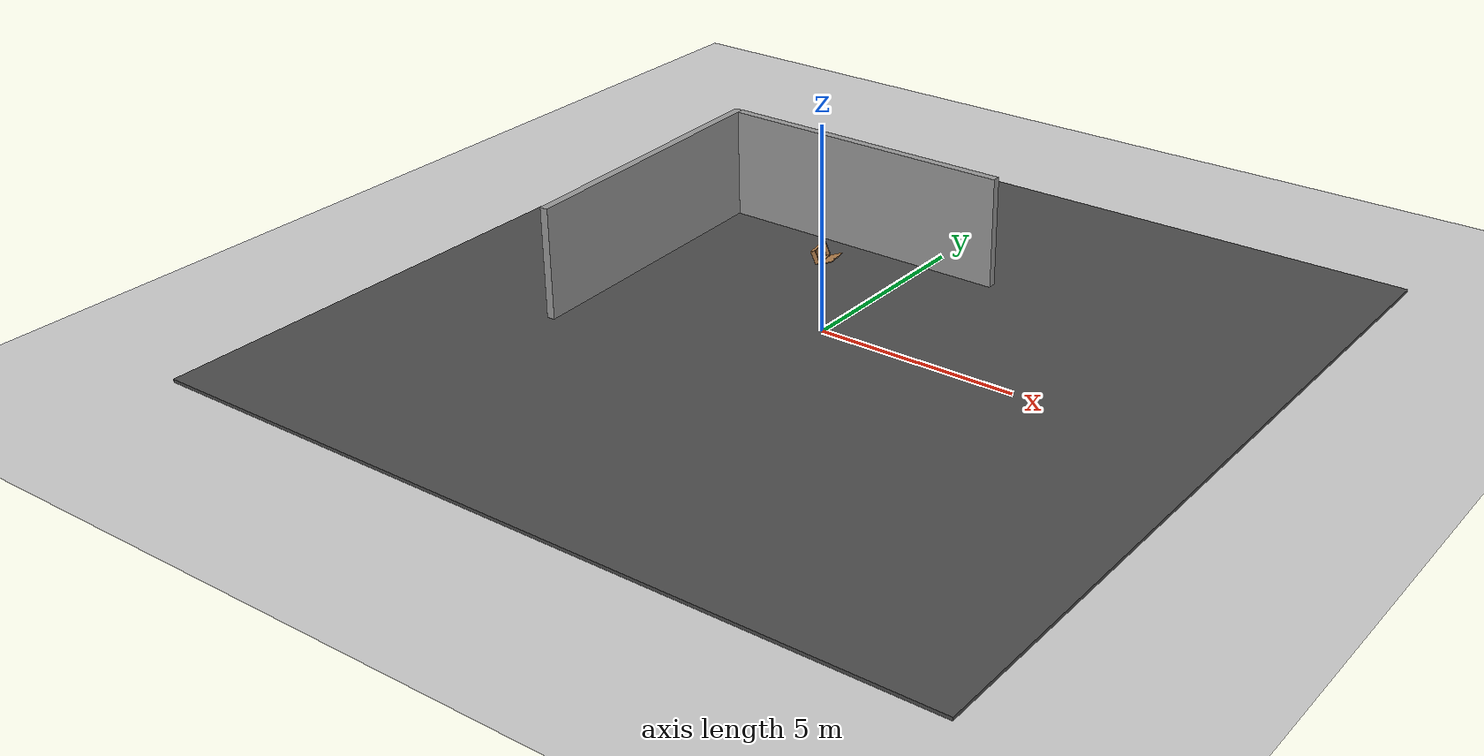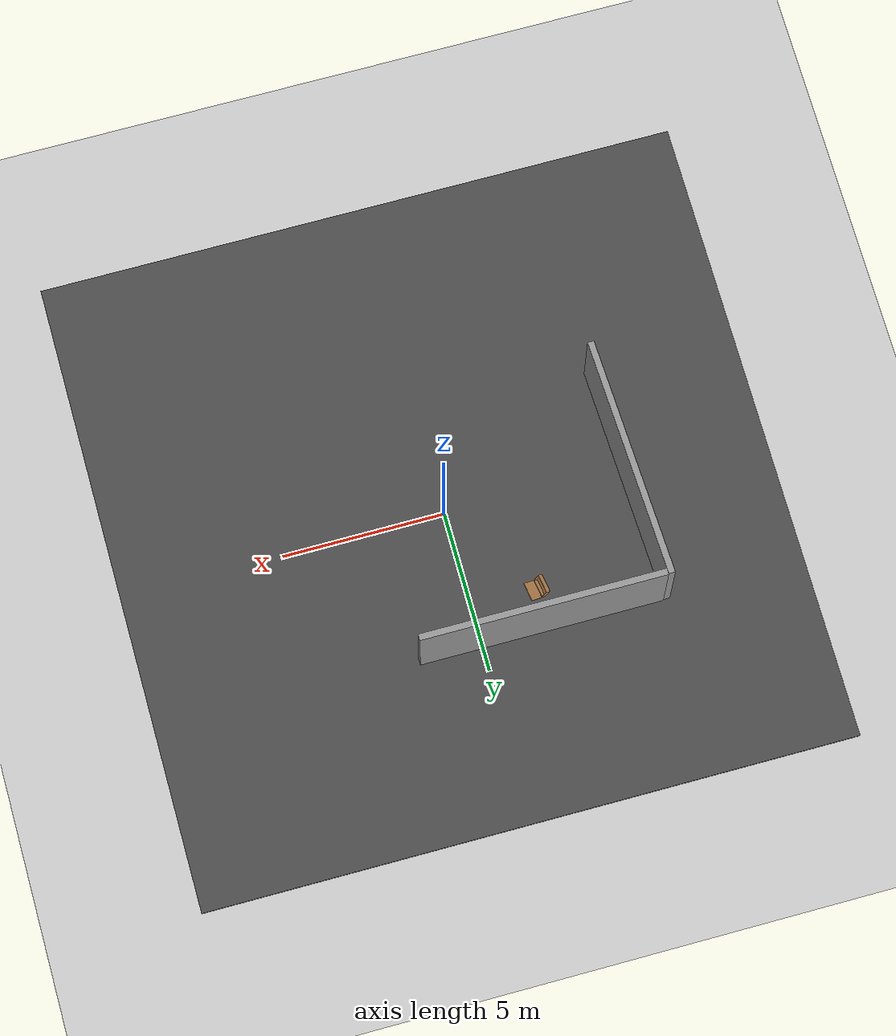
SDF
<sdf version="1.7">
 <world name="default">
  <model name="ground_plane">
   <static>1</static>
   <link name="link">
    <collision name="collision">
     <geometry><plane><normal>0 0 1</normal><size>100 100</size></plane></geometry>
     <surface><friction><ode><mu>100</mu><mu2>50</mu2></ode></friction></surface>
    </collision>
    <visual name="visual">
     <cast_shadows>0</cast_shadows>
     <geometry><plane><normal>0 0 1</normal><size>100 100</size></plane></geometry>
     <material>
      <script><uri>file://media/materials/scripts/gazebo.material</uri><name>Gazebo/Grey</name></script>
     </material>
    </visual>
   </link>
  </model>
  <model name="grey_wall_1">
   <static>1</static>
   <link name="link">
    <pose>0 0 1.4 0 -0 0</pose>
    <collision name="collision"><geometry><box><size>7.5 0.2 2.8</size></box></geometry></collision>
    <visual name="visual">
     <cast_shadows>0</cast_shadows>
     <geometry><box><size>7.5 0.2 2.8</size></box></geometry>
     <material>
      <script>
       <uri>model://grey_wall/materials/scripts</uri>
       <uri>model://grey_wall/materials/textures</uri>
       <name>vrc/grey_wall</name>
      </script>
     </material>
    </visual>
   </link>
   <pose>-5.53671 0.548219 0 0 -0 1.61093</pose>
  </model>
  <model name="grey_wall_4">
   <static>1</static>
   <link name="link">
    <pose>0 0 1.4 0 -0 0</pose>
    <collision name="collision"><geometry><box><size>7.5 0.2 2.8</size></box></geometry></collision>
    <visual name="visual">
     <cast_shadows>0</cast_shadows>
     <geometry><box><size>7.5 0.2 2.8</size></box></geometry>
     <material>
      <script>
       <uri>model://grey_wall/materials/scripts</uri>
       <uri>model://grey_wall/materials/textures</uri>
       <name>vrc/grey_wall</name>
      </script>
     </material>
    </visual>
   </link>
   <pose>-1.82816 4.21809 0 0 -0 0</pose>
  </model>
  <model name="wooden_case">
   <link name="base">
    <pose>0 0 0.024 0 -0 0</pose>
    <inertial>
     <pose>-0.022184 0 0.171592 0 -0 0</pose>
     <mass>3.96264</mass>
     <inertia>
      <ixx>0.213536</ixx>
      <ixy>0</ixy>
      <ixz>0.000779377</ixz>
      <iyy>0.0708943</iyy>
      <iyz>0</iyz>
      <izz>0.154604</izz>
     </inertia>
    </inertial>
    <collision name="collision_back">
     <pose>-0.053975 0 0.1778 0 -0 0</pose>
     <geometry><box><size>0.01905 0.5461 0.3175</size></box></geometry>
     <surface>
      <contact>
       <poissons_ratio>0.347</poissons_ratio>
       <elastic_modulus>8.8e+09</elastic_modulus>
       <ode><kp>100000</kp><kd>100</kd><max_vel>100</max_vel><min_depth>0.001</min_depth></ode>
      </contact>
      <friction>
       <torsional>
        <coefficient>1</coefficient>
        <use_patch_radius>0</use_patch_radius>
        <surface_radius>0.01</surface_radius>
       </torsional>
      </friction>
     </surface>
    </collision>
    <visual name="visual_back">
     <pose>-0.053975 0 0.1778 0 -0 0</pose>
     <geometry><box><size>0.01905 0.5461 0.3175</size></box></geometry>
     <material>
      <script><uri>file://media/materials/scripts/gazebo.material</uri><name>Gazebo/Wood</name></script>
     </material>
    </visual>
    <collision name="collision_bottom">
     <pose>0 0 0.009525 0 -0 0</pose>
     <geometry><box><size>0.127 0.5842 0.01905</size></box></geometry>
     <surface>
      <contact>
       <poissons_ratio>0.347</poissons_ratio>
       <elastic_modulus>8.8e+09</elastic_modulus>
       <ode><kp>100000</kp><kd>100</kd><max_vel>100</max_vel><min_depth>0.001</min_depth></ode>
      </contact>
      <friction>
       <torsional>
        <coefficient>1</coefficient>
        <use_patch_radius>0</use_patch_radius>
        <surface_radius>0.01</surface_radius>
       </torsional>
      </friction>
     </surface>
    </collision>
    <visual name="visual_bottom">
     <pose>0 0 0.009525 0 -0 0</pose>
     <geometry><box><size>0.127 0.5842 0.01905</size></box></geometry>
     <material>
      <script><uri>file://media/materials/scripts/gazebo.material</uri><name>Gazebo/Wood</name></script>
     </material>
    </visual>
    <collision name="collision_top">
     <pose>0 0 0.346075 0 -0 0</pose>
     <geometry><box><size>0.127 0.5842 0.01905</size></box></geometry>
     <surface>
      <contact>
       <poissons_ratio>0.347</poissons_ratio>
       <elastic_modulus>8.8e+09</elastic_modulus>
       <ode><kp>100000</kp><kd>100</kd><max_vel>100</max_vel><min_depth>0.001</min_depth></ode>
      </contact>
      <friction>
       <torsional>
        <coefficient>1</coefficient>
        <use_patch_radius>0</use_patch_radius>
        <surface_radius>0.01</surface_radius>
       </torsional>
      </friction>
     </surface>
    </collision>
    <visual name="visual_top">
     <pose>0 0 0.346075 0 -0 0</pose>
     <geometry><box><size>0.127 0.5842 0.01905</size></box></geometry>
     <material>
      <script><uri>file://media/materials/scripts/gazebo.material</uri><name>Gazebo/Wood</name></script>
     </material>
    </visual>
    <collision name="collision_left">
     <pose>0 -0.282575 0.1778 0 -0 0</pose>
     <geometry><box><size>0.127 0.01905 0.3175</size></box></geometry>
     <surface>
      <contact>
       <poissons_ratio>0.347</poissons_ratio>
       <elastic_modulus>8.8e+09</elastic_modulus>
       <ode><kp>100000</kp><kd>100</kd><max_vel>100</max_vel><min_depth>0.001</min_depth></ode>
      </contact>
      <friction>
       <torsional>
        <coefficient>1</coefficient>
        <use_patch_radius>0</use_patch_radius>
        <surface_radius>0.01</surface_radius>
       </torsional>
      </friction>
     </surface>
    </collision>
    <visual name="visual_left">
     <pose>0 -0.282575 0.1778 0 -0 0</pose>
     <geometry><box><size>0.127 0.01905 0.3175</size></box></geometry>
     <material>
      <script><uri>file://media/materials/scripts/gazebo.material</uri><name>Gazebo/Wood</name></script>
     </material>
    </visual>
    <collision name="collision_right">
     <pose>0 0.282575 0.1778 0 -0 0</pose>
     <geometry><box><size>0.127 0.01905 0.3175</size></box></geometry>
     <surface>
      <contact>
       <poissons_ratio>0.347</poissons_ratio>
       <elastic_modulus>8.8e+09</elastic_modulus>
       <ode><kp>100000</kp><kd>100</kd><max_vel>100</max_vel><min_depth>0.001</min_depth></ode>
      </contact>
      <friction>
       <torsional>
        <coefficient>1</coefficient>
        <use_patch_radius>0</use_patch_radius>
        <surface_radius>0.01</surface_radius>
       </torsional>
      </friction>
     </surface>
    </collision>
    <visual name="visual_right">
     <pose>0 0.282575 0.1778 0 -0 0</pose>
     <geometry><box><size>0.127 0.01905 0.3175</size></box></geometry>
     <material>
      <script><uri>file://media/materials/scripts/gazebo.material</uri><name>Gazebo/Wood</name></script>
     </material>
    </visual>
    <collision name="collision_block_left">
     <pose>0.0095 -0.2151 -0.012 0 -0 0</pose>
     <geometry><box><size>0.108 0.05 0.024</size></box></geometry>
     <surface>
      <contact>
       <poissons_ratio>0.347</poissons_ratio>
       <elastic_modulus>8.8e+09</elastic_modulus>
       <ode><kp>100000</kp><kd>100</kd><max_vel>100</max_vel><min_depth>0.001</min_depth></ode>
      </contact>
      <friction>
       <torsional>
        <coefficient>1</coefficient>
        <use_patch_radius>0</use_patch_radius>
        <surface_radius>0.01</surface_radius>
       </torsional>
      </friction>
     </surface>
    </collision>
    <visual name="visual_block_left">
     <pose>0.0095 -0.2151 -0.012 0 -0 0</pose>
     <geometry><box><size>0.108 0.05 0.024</size></box></geometry>
     <material>
      <script><uri>file://media/materials/scripts/gazebo.material</uri><name>Gazebo/Wood</name></script>
     </material>
    </visual>
    <collision name="collision_block_right">
     <pose>0.0095 0.2151 -0.012 0 -0 0</pose>
     <geometry><box><size>0.108 0.05 0.024</size></box></geometry>
     <surface>
      <contact>
       <poissons_ratio>0.347</poissons_ratio>
       <elastic_modulus>8.8e+09</elastic_modulus>
       <ode><kp>100000</kp><kd>100</kd><max_vel>100</max_vel><min_depth>0.001</min_depth></ode>
      </contact>
      <friction>
       <torsional>
        <coefficient>1</coefficient>
        <use_patch_radius>0</use_patch_radius>
        <surface_radius>0.01</surface_radius>
       </torsional>
      </friction>
     </surface>
    </collision>
    <visual name="visual_block_right">
     <pose>0.0095 0.2151 -0.012 0 -0 0</pose>
     <geometry><box><size>0.108 0.05 0.024</size></box></geometry>
     <material>
      <script><uri>file://media/materials/scripts/gazebo.material</uri><name>Gazebo/Wood</name></script>
     </material>
    </visual>
   </link>
   <link name="lid">
    <pose>0.243775 0 0.009525 0 -0 0</pose>
    <inertial>
     <mass>1.97874</mass>
     <inertia>
      <ixx>0.0563367</ixx>
      <ixy>0</ixy>
      <ixz>0</ixz>
      <iyy>0.020911</iyy>
      <iyz>0</iyz>
      <izz>0.0771281</izz>
     </inertia>
    </inertial>
    <collision name="collision">
     <geometry><box><size>0.3556 0.5842 0.01905</size></box></geometry>
     <surface>
      <contact>
       <poissons_ratio>0.347</poissons_ratio>
       <elastic_modulus>8.8e+09</elastic_modulus>
       <ode><kp>100000</kp><kd>100</kd><max_vel>100</max_vel><min_depth>0.001</min_depth></ode>
      </contact>
      <friction>
       <torsional>
        <coefficient>1</coefficient>
        <use_patch_radius>0</use_patch_radius>
        <surface_radius>0.01</surface_radius>
       </torsional>
      </friction>
     </surface>
    </collision>
    <visual name="visual">
     <geometry><box><size>0.3556 0.5842 0.01905</size></box></geometry>
     <material>
      <script><uri>file://media/materials/scripts/gazebo.material</uri><name>Gazebo/Wood</name></script>
     </material>
    </visual>
    <visual name="tee_nut_1">
     <pose>0.122 -0.216 0 0 -0 0</pose>
     <geometry><cylinder><radius>0.00635</radius><length>0.0192405</length></cylinder></geometry>
     <material>
      <script><uri>file://media/materials/scripts/gazebo.material</uri><name>Gazebo/Grey</name></script>
     </material>
    </visual>
    <visual name="tee_nut_2">
     <pose>0.122 -0.088 0 0 -0 0</pose>
     <geometry><cylinder><radius>0.00635</radius><length>0.0192405</length></cylinder></geometry>
     <material>
      <script><uri>file://media/materials/scripts/gazebo.material</uri><name>Gazebo/Grey</name></script>
     </material>
    </visual>
    <visual name="tee_nut_3">
     <pose>0.122 0.088 0 0 -0 0</pose>
     <geometry><cylinder><radius>0.00635</radius><length>0.0192405</length></cylinder></geometry>
     <material>
      <script><uri>file://media/materials/scripts/gazebo.material</uri><name>Gazebo/Grey</name></script>
     </material>
    </visual>
    <visual name="tee_nut_4">
     <pose>0.122 0.216 0 0 -0 0</pose>
     <geometry><cylinder><radius>0.00635</radius><length>0.0192405</length></cylinder></geometry>
     <material>
      <script><uri>file://media/materials/scripts/gazebo.material</uri><name>Gazebo/Grey</name></script>
     </material>
    </visual>
   </link>
   <joint name="lid_hinge" type="revolute">
    <pose>-0.1778 0 0.01905 0 -0 0</pose>
    <parent>base</parent>
    <child>lid</child>
    <axis>
     <xyz>0 1 0</xyz>
     <limit><upper>0.523599</upper><lower>-1.5708</lower></limit>
     <dynamics><spring_reference>0</spring_reference><spring_stiffness>0</spring_stiffness></dynamics>
    </axis>
   </joint>
   <pose>-2.11909 2.99078 0.066476 0 -0.406708 0.156336</pose>
  </model>
  <model name="asphalt_plane">
   <static>1</static>
   <link name="link">
    <collision name="collision"><geometry><box><size>20 20 0.1</size></box></geometry></collision>
    <visual name="visual">
     <cast_shadows>0</cast_shadows>
     <geometry><box><size>20 20 0.1</size></box></geometry>
     <material>
      <script>
       <uri>model://asphalt_plane/materials/scripts</uri>
       <uri>model://asphalt_plane/materials/textures</uri>
       <name>vrc/asphalt</name>
      </script>
     </material>
    </visual>
   </link>
   <pose>0.001928 -0.179786 0 0 -0 0</pose>
  </model>
 </world>
</sdf>
